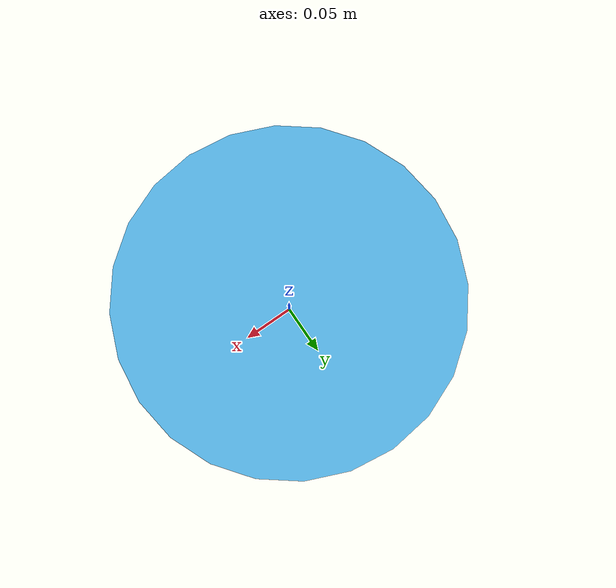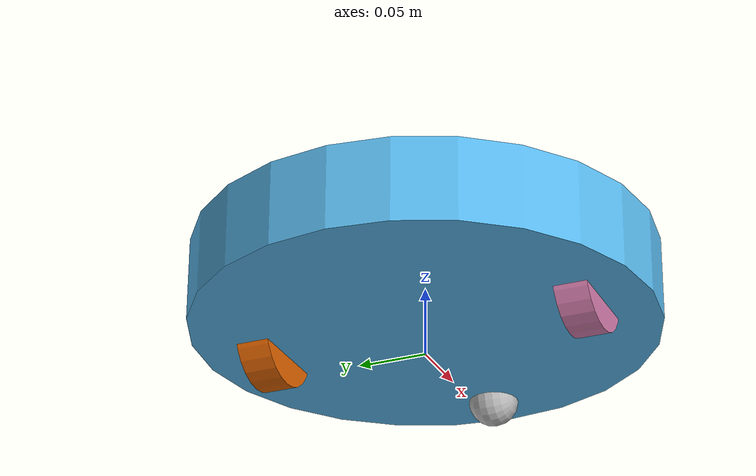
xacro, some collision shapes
<?xml version="1.0" ?>
<robot name="create_2"
  xmlns:xacro="http://ros.org/wiki/xacro">
  <xacro:include filename="$(find custom_description)/description/create/urdf/create_base.urdf.xacro" />
  <xacro:include filename="$(find custom_description)/description/create/urdf/create_2_gazebo.urdf.xacro" />
  <create_base wheel_separation="0.235" base_diameter="0.3485">
    <mesh filename="package://custom_description/description/create/meshes/create_2.dae" />
  </create_base>
  <range_sensor name="right_wall_sensor" parent="base_link" ros_topic="/right_wall_sensor_range" update_rate="10" min_range="0.0160" max_range="0.1" field_of_view="${2*3.1415926/180}" ray_count="1" type="infrared">
    <origin xyz="0.09 -0.120 0.042" rpy="0 0 -1.0" />
  </range_sensor>
  <range_sensor name="left_wall_sensor" parent="base_link" ros_topic="/left_wall_sensor_range" update_rate="10" min_range="0.0160" max_range="0.1" field_of_view="${2*3.1415926/180}" ray_count="1" type="infrared">
    <origin xyz="0.09 0.120 0.042" rpy="0 0 1.0" />
  </range_sensor>
  <range_sensor name="front_sonar" parent="base_link" ros_topic="/front_range" update_rate="10" min_range="0.02" max_range="0.25" field_of_view="${80*3.1415926/180}" ray_count="1">
    <origin xyz="0.15 0.0 0.042" rpy="0 0 0" />
  </range_sensor>
</robot>

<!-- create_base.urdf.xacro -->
<robot name="create_2"
  xmlns:xacro="http://ros.org/wiki/xacro">
  <xacro:include filename="$(find custom_description)/description/create/urdf/create_base_gazebo.urdf.xacro" />
  <xacro:include filename="$(find custom_description)/description/range_sensor.urdf.xacro" />
  <xacro:include filename="$(find custom_description)/description/kinect.urdf.xacro" />
  <xacro:property name="PI" value="3.1415926535897931" />
  <xacro:macro name="create_wheel" params="prefix y_offset wheel_radius wheel_width">
    <link name="${prefix}_wheel_link">
      <inertial>
        <origin xyz="0 0 0" />
        <mass value="0.01" />
        <inertia ixx="0.001" ixy="0.0" ixz="0.0" iyy="0.001" iyz="0.0" izz="0.001" />
      </inertial>
      <visual>
        <origin xyz="0 0 0" rpy="0 ${PI/2} ${PI/2}" />
        <geometry>
          <cylinder radius="${wheel_radius}" length="${wheel_width}" />
        </geometry>
      </visual>
      <collision>
        <origin xyz="0 0 0" rpy="0 ${PI/2} ${PI/2}" />
        <geometry>
          <cylinder radius="${wheel_radius}" length="${wheel_width}" />
        </geometry>
      </collision>
    </link>
    <joint name="${prefix}_wheel_joint" type="continuous">
      <origin xyz="0 ${y_offset} 0.015" rpy="0 0 0" />
      <parent link="base_link" />
      <child link="${prefix}_wheel_link" />
      <axis xyz="0 1 0" />
    </joint>
  </xacro:macro>
  <xacro:macro name="create_base" params="diffdrive_update_rate:=40 wheel_separation wheel_radius:=0.036 wheel_width:=0.024 wheel_torque:=1.0 wheel_accel:=1.8 mass_kg:=3.5 base_diameter *mesh">
    <link name="base_footprint">
      <visual>
        <origin xyz="0 0 0" rpy="0 0 0" />
        <geometry>
          <box size="0.001 0.001 0.001" />
        </geometry>
        <material name="Green" />
      </visual>
      <collision>
        <origin xyz="0 0 0.017" rpy="0 0 0" />
        <geometry>
          <box size="0.001 0.001 0.001" />
        </geometry>
      </collision>
    </link>
    <link name="base_link">
      <inertial>
        <origin xyz="0.01 0 0" />
				<mass value="2.4" />
        <inertia ixx="0.019995" ixy="0.0" ixz="0.0" iyy="0.019995" iyz="0.0" izz="0.03675" />
      </inertial>
      <visual>
        <origin xyz=" 0 0 0.0308" rpy="0 0 0" />
        <geometry>
          <xacro:insert_block name="mesh" />
        </geometry>
      </visual>
      <collision>
        <origin xyz="0.0 0.0 0.0308" rpy="0 0 0" />
        <geometry>
          <cylinder length="0.0611632" radius="0.16495" />
        </geometry>
      </collision>
    </link>
    <link name="left_cliff_sensor_link">
      <inertial>
        <mass value="0.01" />
        <origin xyz="0 0 0" />
        <inertia ixx="0.001" ixy="0.0" ixz="0.0" iyy="0.001" iyz="0.0" izz="0.001" />
      </inertial>
    </link>
    <link name="right_cliff_sensor_link">
      <inertial>
        <mass value="0.01" />
        <origin xyz="0 0 0" />
        <inertia ixx="0.001" ixy="0.0" ixz="0.0" iyy="0.001" iyz="0.0" izz="0.001" />
      </inertial>
    </link>
    <link name="front_cliff_sensor_link">
      <inertial>
        <mass value="0.01" />
        <origin xyz="0 0 0" />
        <inertia ixx="0.001" ixy="0.0" ixz="0.0" iyy="0.001" iyz="0.0" izz="0.001" />
      </inertial>
    </link>
    <joint name="base_footprint_joint" type="fixed">
      <origin xyz="0 0 0.017" rpy="0 0 0" />
      <parent link="base_footprint" />
      <child link="base_link" />
    </joint>
    <joint name="base_left_cliff_sensor_joint" type="fixed">
      <origin xyz="0.07 0.14 0.01" rpy="0 ${PI/2} 0" />
      <parent link="base_link" />
      <child link="left_cliff_sensor_link" />
    </joint>
    <joint name="base_right_cliff_sensor_joint" type="fixed">
      <origin xyz="0.07 -0.14 0.01" rpy="0 ${PI/2} 0" />
      <parent link="base_link" />
      <child link="right_cliff_sensor_link" />
    </joint>
    <joint name="base_front_cliff_sensor_joint" type="fixed">
      <origin xyz="0.15 0.0 0.01" rpy="0 ${PI/2} 0" />
      <parent link="base_link" />
      <child link="front_cliff_sensor_link" />
    </joint>
    <xacro:create_wheel prefix="left" y_offset="${wheel_separation / 2}" wheel_radius="0.0358" wheel_width="${wheel_width}"/>
    <xacro:create_wheel prefix="right" y_offset="${wheel_separation / -2}" wheel_radius="${wheel_radius}" wheel_width="${wheel_width}"/>
    <link name="front_wheel_link">
      <inertial>
        <origin xyz="0 0 0" />
        <mass value="0.01" />
        <inertia ixx="0.001" ixy="0.0" ixz="0.0" iyy="0.001" iyz="0.0" izz="0.001" />
      </inertial>
      <visual>
        <origin xyz="0 0 0" rpy="0 ${PI/2} ${PI/2}" />
        <geometry>
          <sphere radius="0.018" />
        </geometry>
      </visual>
      <collision>
        <origin xyz="0 0 0" rpy="0 ${PI/2} ${PI/2}" />
        <geometry>
          <sphere radius="0.018" />
        </geometry>
      </collision>
    </link>
    <!-- fixed because there's no transmission -->
    <joint name="front_castor_joint" type="fixed">
      <origin xyz="0.13 0 0.0" rpy="0 0 0" />
      <parent link="base_link" />
      <child link="front_wheel_link" />
      <axis xyz="0 1 0" />
    </joint>
    <joint name="gyro_joint" type="fixed">
      <axis xyz="0 1 0" />
      <origin xyz="0 0 0.04" rpy="0 0 0" />
      <parent link="base_link" />
      <child link="gyro_link" />
    </joint>
    <link name="gyro_link">
      <inertial>
        <mass value="0.001" />
        <origin xyz="0 0 0" rpy="0 0 0" />
        <inertia ixx="0.0001" ixy="0" ixz="0" iyy="0.000001" iyz="0" izz="0.0001" />
      </inertial>
    </link>
    <!-- Simulation sensors -->
    <sim_create_base/>

  </xacro:macro>
</robot>

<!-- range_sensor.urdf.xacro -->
<robot xmlns:xacro="http://www.ros.org/wiki/xacro">
  <xacro:macro name="range_sensor" params="name parent *origin ros_topic update_rate min_range max_range field_of_view ray_count type:=ultrasound">
    <joint name="${name}_joint" type="fixed">
      <xacro:insert_block name="origin" />
      <parent link="${parent}"/>
      <child link="${name}_link"/>
    </joint>

    <link name="${name}_link">
      <inertial>
        <mass value="0.001" />
        <origin xyz="0 0 0" rpy="0 0 0" />
        <inertia ixx="0.000000017" ixy="0" ixz="0" iyy="0.000000017" iyz="0" izz="0.000000017" />
      </inertial>
      <visual>
        <origin xyz="0 0 0" rpy="0 0 0" />
        <geometry>
          <box size="0.01 0.01 0.01" />
        </geometry>
      </visual>
      <collision>
        <origin xyz="0 0 0" rpy="0 0 0" />
        <geometry>
          <box size="0.01 0.01 0.01" />
        </geometry>
      </collision>
    </link>

    <gazebo reference="${name}_link">
      <sensor type="ray" name="${name}">
        <always_on>true</always_on>
        <update_rate>${update_rate}</update_rate>
        <pose>0 0 0 0 0 0</pose>
        <visualize>false</visualize>
        <ray>
          <scan>
            <horizontal>
              <samples>${ray_count}</samples>
              <resolution>1</resolution>
              <min_angle>-${field_of_view/2}</min_angle>
              <max_angle> ${field_of_view/2}</max_angle>
            </horizontal>
          </scan>
          <range>
            <min>${min_range}</min>
            <max>${max_range}</max>
            <resolution>0.01</resolution>
          </range>
        </ray>

        <plugin name="gazebo_ros_${name}_controller" filename="libgazebo_ros_range.so">
          <fov>${field_of_view}</fov>
          <updateRate>${update_rate}</updateRate>
          <gaussianNoise>0.01</gaussianNoise>
          <topicName>${ros_topic}</topicName>
          <frameName>${name}_link</frameName>
          <radiation>${type}</radiation>
        </plugin>
      </sensor>
    </gazebo>
  </xacro:macro>
</robot>
